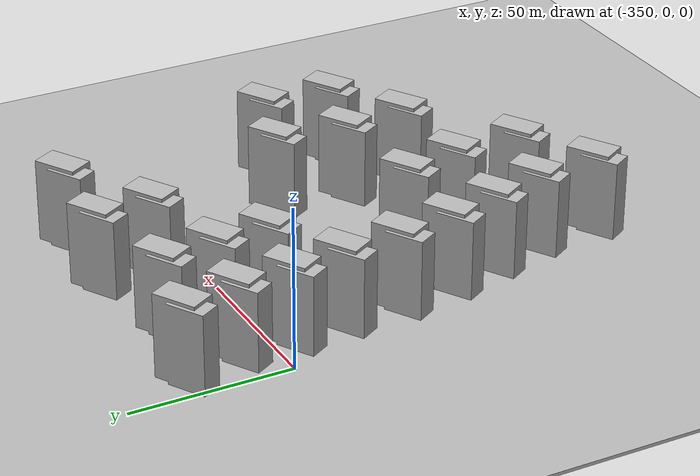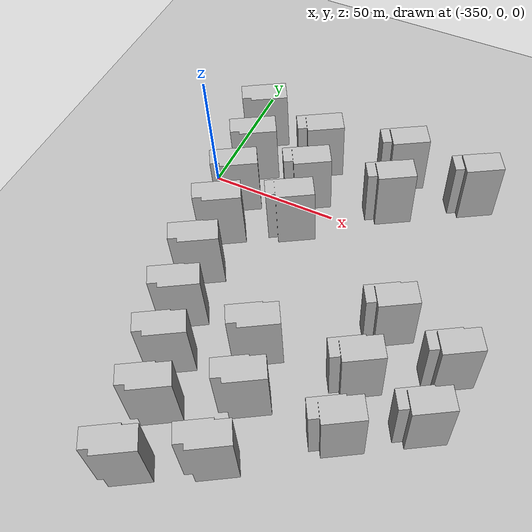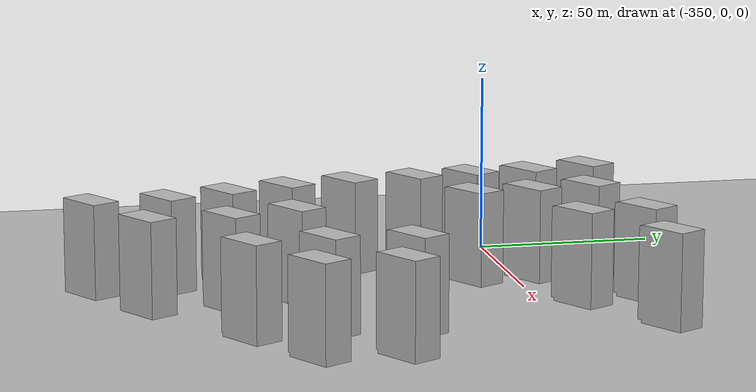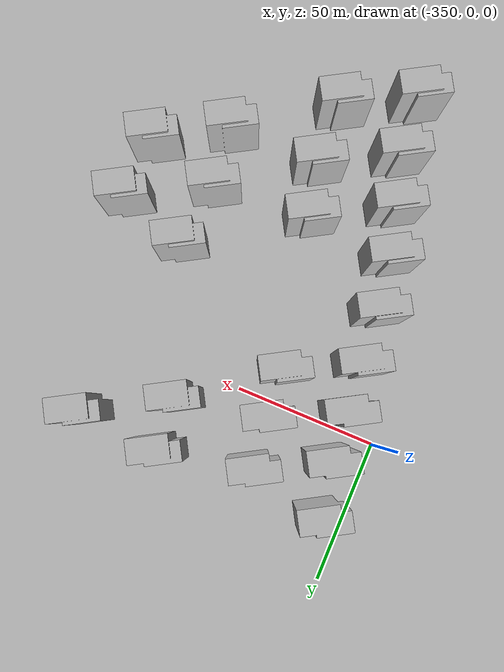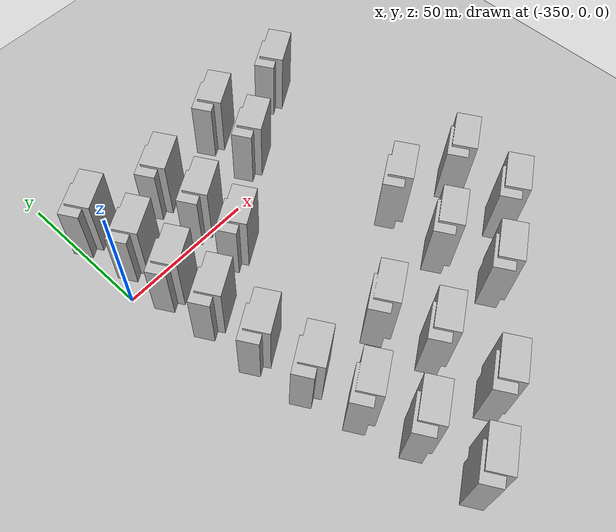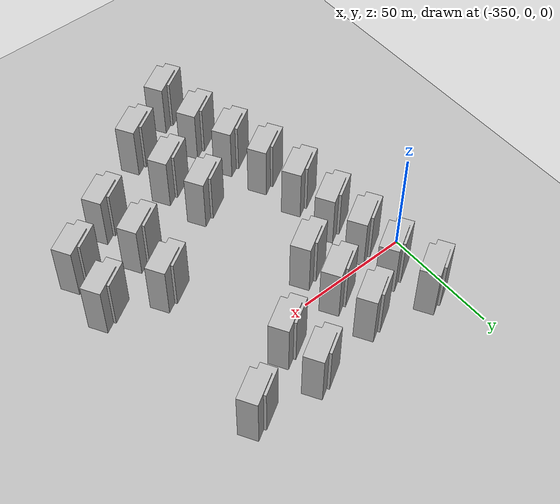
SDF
<sdf version="1.7">
 <world name="default">
  <model name="ground_plane">
   <static>1</static>
   <link name="link">
    <collision name="collision">
     <geometry><mesh><uri>model://ground_plane/scripts/plane.dae</uri><normal>0 0 1</normal></mesh></geometry>
     <surface><friction><ode><mu>100</mu><mu2>50</mu2></ode></friction></surface>
    </collision>
    <visual name="visual">
     <geometry><mesh><uri>model://ground_plane/scripts/plane.dae</uri><normal>0 0 1</normal></mesh></geometry>
     <material>
      <lighting>1</lighting>
      <script><uri>model://ground_plane/scripts/plane.jpg</uri><name>__default__</name></script>
      <shader type="pixel"/>
     </material>
    </visual>
   </link>
  </model>
  <model name="apartment2_1">
   <static>1</static>
   <link name="link_0">
    <inertial>
     <mass>1</mass>
     <inertia>
      <ixx>0.166667</ixx>
      <ixy>0</ixy>
      <ixz>0</ixz>
      <iyy>0.166667</iyy>
      <iyz>0</iyz>
      <izz>0.166667</izz>
     </inertia>
    </inertial>
    <pose>1e-06 -0 0 0 -0 0</pose>
    <visual name="visual">
     <geometry>
      <mesh><uri>model://apartment1/scripts/apartment1.dae</uri><scale>0.35 0.14 0.22</scale></mesh>
     </geometry>
     <material>
      <lighting>1</lighting>
      <script><uri>model://apartment1/scripts/apartment1.jpg</uri><name>__default__</name></script>
      <shader type="pixel"/>
     </material>
    </visual>
    <collision name="collision">
     <geometry>
      <mesh><uri>model://apartment1/scripts/apartment1.dae</uri><scale>0.35 0.14 0.22</scale></mesh>
     </geometry>
     <surface>
      <friction>
       <ode><mu>1</mu><mu2>1</mu2><fdir1>0 0 0</fdir1><slip1>0</slip1><slip2>0</slip2></ode>
       <torsional>
        <coefficient>1</coefficient>
        <patch_radius>0</patch_radius>
        <surface_radius>0</surface_radius>
        <use_patch_radius>1</use_patch_radius>
        <ode><slip>0</slip></ode>
       </torsional>
      </friction>
      <bounce><restitution_coefficient>0</restitution_coefficient><threshold>1e+06</threshold></bounce>
      <contact>
       <collide_without_contact>0</collide_without_contact>
       <collide_without_contact_bitmask>1</collide_without_contact_bitmask>
       <collide_bitmask>1</collide_bitmask>
       <ode>
        <soft_cfm>0</soft_cfm>
        <soft_erp>0.2</soft_erp>
        <kp>1e+13</kp>
        <kd>1</kd>
        <max_vel>0.01</max_vel>
        <min_depth>0</min_depth>
       </ode>
       <bullet>
        <split_impulse>1</split_impulse>
        <split_impulse_penetration_threshold>-0.01</split_impulse_penetration_threshold>
        <soft_cfm>0</soft_cfm>
        <soft_erp>0.2</soft_erp>
        <kp>1e+13</kp>
        <kd>1</kd>
       </bullet>
      </contact>
     </surface>
    </collision>
   </link>
   <static>0</static>
   <pose>-279.707 11.2605 0 0 -0 0.527898</pose>
  </model>
  <model name="apartment2_1_clone">
   <static>1</static>
   <link name="link_0">
    <inertial>
     <mass>1</mass>
     <inertia>
      <ixx>0.166667</ixx>
      <ixy>0</ixy>
      <ixz>0</ixz>
      <iyy>0.166667</iyy>
      <iyz>0</iyz>
      <izz>0.166667</izz>
     </inertia>
    </inertial>
    <pose>1e-06 -0 0 0 -0 0</pose>
    <visual name="visual">
     <geometry>
      <mesh><uri>model://apartment1/scripts/apartment1.dae</uri><scale>0.35 0.14 0.22</scale></mesh>
     </geometry>
     <material>
      <lighting>1</lighting>
      <script><uri>model://apartment1/scripts/apartment1.jpg</uri><name>__default__</name></script>
      <shader type="pixel"/>
     </material>
    </visual>
    <collision name="collision">
     <geometry>
      <mesh><uri>model://apartment1/scripts/apartment1.dae</uri><scale>0.35 0.14 0.22</scale></mesh>
     </geometry>
     <surface>
      <friction>
       <ode><mu>1</mu><mu2>1</mu2><fdir1>0 0 0</fdir1><slip1>0</slip1><slip2>0</slip2></ode>
       <torsional>
        <coefficient>1</coefficient>
        <patch_radius>0</patch_radius>
        <surface_radius>0</surface_radius>
        <use_patch_radius>1</use_patch_radius>
        <ode><slip>0</slip></ode>
       </torsional>
      </friction>
      <bounce><restitution_coefficient>0</restitution_coefficient><threshold>1e+06</threshold></bounce>
      <contact>
       <collide_without_contact>0</collide_without_contact>
       <collide_without_contact_bitmask>1</collide_without_contact_bitmask>
       <collide_bitmask>1</collide_bitmask>
       <ode>
        <soft_cfm>0</soft_cfm>
        <soft_erp>0.2</soft_erp>
        <kp>1e+13</kp>
        <kd>1</kd>
        <max_vel>0.01</max_vel>
        <min_depth>0</min_depth>
       </ode>
       <bullet>
        <split_impulse>1</split_impulse>
        <split_impulse_penetration_threshold>-0.01</split_impulse_penetration_threshold>
        <soft_cfm>0</soft_cfm>
        <soft_erp>0.2</soft_erp>
        <kp>1e+13</kp>
        <kd>1</kd>
       </bullet>
      </contact>
     </surface>
    </collision>
   </link>
   <static>0</static>
   <pose>-281.006 29.3579 0 0 -0 0.527898</pose>
  </model>
  <model name="apartment2_1_clone_1">
   <static>1</static>
   <link name="link_0">
    <inertial>
     <mass>1</mass>
     <inertia>
      <ixx>0.166667</ixx>
      <ixy>0</ixy>
      <ixz>0</ixz>
      <iyy>0.166667</iyy>
      <iyz>0</iyz>
      <izz>0.166667</izz>
     </inertia>
    </inertial>
    <pose>1e-06 -0 0 0 -0 0</pose>
    <visual name="visual">
     <geometry>
      <mesh><uri>model://apartment1/scripts/apartment1.dae</uri><scale>0.35 0.14 0.22</scale></mesh>
     </geometry>
     <material>
      <lighting>1</lighting>
      <script><uri>model://apartment1/scripts/apartment1.jpg</uri><name>__default__</name></script>
      <shader type="pixel"/>
     </material>
    </visual>
    <collision name="collision">
     <geometry>
      <mesh><uri>model://apartment1/scripts/apartment1.dae</uri><scale>0.35 0.14 0.22</scale></mesh>
     </geometry>
     <surface>
      <friction>
       <ode><mu>1</mu><mu2>1</mu2><fdir1>0 0 0</fdir1><slip1>0</slip1><slip2>0</slip2></ode>
       <torsional>
        <coefficient>1</coefficient>
        <patch_radius>0</patch_radius>
        <surface_radius>0</surface_radius>
        <use_patch_radius>1</use_patch_radius>
        <ode><slip>0</slip></ode>
       </torsional>
      </friction>
      <bounce><restitution_coefficient>0</restitution_coefficient><threshold>1e+06</threshold></bounce>
      <contact>
       <collide_without_contact>0</collide_without_contact>
       <collide_without_contact_bitmask>1</collide_without_contact_bitmask>
       <collide_bitmask>1</collide_bitmask>
       <ode>
        <soft_cfm>0</soft_cfm>
        <soft_erp>0.2</soft_erp>
        <kp>1e+13</kp>
        <kd>1</kd>
        <max_vel>0.01</max_vel>
        <min_depth>0</min_depth>
       </ode>
       <bullet>
        <split_impulse>1</split_impulse>
        <split_impulse_penetration_threshold>-0.01</split_impulse_penetration_threshold>
        <soft_cfm>0</soft_cfm>
        <soft_erp>0.2</soft_erp>
        <kp>1e+13</kp>
        <kd>1</kd>
       </bullet>
      </contact>
     </surface>
    </collision>
   </link>
   <static>0</static>
   <pose>-251.791 27.5115 0 0 -0 0.527898</pose>
  </model>
  <model name="apartment2_1_clone_7">
   <static>1</static>
   <link name="link_0">
    <inertial>
     <mass>1</mass>
     <inertia>
      <ixx>0.166667</ixx>
      <ixy>0</ixy>
      <ixz>0</ixz>
      <iyy>0.166667</iyy>
      <iyz>0</iyz>
      <izz>0.166667</izz>
     </inertia>
    </inertial>
    <pose>1e-06 -0 0 0 -0 0</pose>
    <visual name="visual">
     <geometry>
      <mesh><uri>model://apartment1/scripts/apartment1.dae</uri><scale>0.35 0.14 0.22</scale></mesh>
     </geometry>
     <material>
      <lighting>1</lighting>
      <script><uri>model://apartment1/scripts/apartment1.jpg</uri><name>__default__</name></script>
      <shader type="pixel"/>
     </material>
    </visual>
    <collision name="collision">
     <geometry>
      <mesh><uri>model://apartment1/scripts/apartment1.dae</uri><scale>0.35 0.14 0.22</scale></mesh>
     </geometry>
     <surface>
      <friction>
       <ode><mu>1</mu><mu2>1</mu2><fdir1>0 0 0</fdir1><slip1>0</slip1><slip2>0</slip2></ode>
       <torsional>
        <coefficient>1</coefficient>
        <patch_radius>0</patch_radius>
        <surface_radius>0</surface_radius>
        <use_patch_radius>1</use_patch_radius>
        <ode><slip>0</slip></ode>
       </torsional>
      </friction>
      <bounce><restitution_coefficient>0</restitution_coefficient><threshold>1e+06</threshold></bounce>
      <contact>
       <collide_without_contact>0</collide_without_contact>
       <collide_without_contact_bitmask>1</collide_without_contact_bitmask>
       <collide_bitmask>1</collide_bitmask>
       <ode>
        <soft_cfm>0</soft_cfm>
        <soft_erp>0.2</soft_erp>
        <kp>1e+13</kp>
        <kd>1</kd>
        <max_vel>0.01</max_vel>
        <min_depth>0</min_depth>
       </ode>
       <bullet>
        <split_impulse>1</split_impulse>
        <split_impulse_penetration_threshold>-0.01</split_impulse_penetration_threshold>
        <soft_cfm>0</soft_cfm>
        <soft_erp>0.2</soft_erp>
        <kp>1e+13</kp>
        <kd>1</kd>
       </bullet>
      </contact>
     </surface>
    </collision>
   </link>
   <static>0</static>
   <pose>-260.735 -82.3952 0 0 -0 0.527898</pose>
  </model>
  <model name="apartment2_1_clone_8">
   <static>1</static>
   <link name="link_0">
    <inertial>
     <mass>1</mass>
     <inertia>
      <ixx>0.166667</ixx>
      <ixy>0</ixy>
      <ixz>0</ixz>
      <iyy>0.166667</iyy>
      <iyz>0</iyz>
      <izz>0.166667</izz>
     </inertia>
    </inertial>
    <pose>1e-06 -0 0 0 -0 0</pose>
    <visual name="visual">
     <geometry>
      <mesh><uri>model://apartment1/scripts/apartment1.dae</uri><scale>0.35 0.14 0.22</scale></mesh>
     </geometry>
     <material>
      <lighting>1</lighting>
      <script><uri>model://apartment1/scripts/apartment1.jpg</uri><name>__default__</name></script>
      <shader type="pixel"/>
     </material>
    </visual>
    <collision name="collision">
     <geometry>
      <mesh><uri>model://apartment1/scripts/apartment1.dae</uri><scale>0.35 0.14 0.22</scale></mesh>
     </geometry>
     <surface>
      <friction>
       <ode><mu>1</mu><mu2>1</mu2><fdir1>0 0 0</fdir1><slip1>0</slip1><slip2>0</slip2></ode>
       <torsional>
        <coefficient>1</coefficient>
        <patch_radius>0</patch_radius>
        <surface_radius>0</surface_radius>
        <use_patch_radius>1</use_patch_radius>
        <ode><slip>0</slip></ode>
       </torsional>
      </friction>
      <bounce><restitution_coefficient>0</restitution_coefficient><threshold>1e+06</threshold></bounce>
      <contact>
       <collide_without_contact>0</collide_without_contact>
       <collide_without_contact_bitmask>1</collide_without_contact_bitmask>
       <collide_bitmask>1</collide_bitmask>
       <ode>
        <soft_cfm>0</soft_cfm>
        <soft_erp>0.2</soft_erp>
        <kp>1e+13</kp>
        <kd>1</kd>
        <max_vel>0.01</max_vel>
        <min_depth>0</min_depth>
       </ode>
       <bullet>
        <split_impulse>1</split_impulse>
        <split_impulse_penetration_threshold>-0.01</split_impulse_penetration_threshold>
        <soft_cfm>0</soft_cfm>
        <soft_erp>0.2</soft_erp>
        <kp>1e+13</kp>
        <kd>1</kd>
       </bullet>
      </contact>
     </surface>
    </collision>
   </link>
   <static>0</static>
   <pose>-237.747 -68.8073 0 0 -0 0.527898</pose>
  </model>
  <model name="apartment2_1_clone_11">
   <static>1</static>
   <link name="link_0">
    <inertial>
     <mass>1</mass>
     <inertia>
      <ixx>0.166667</ixx>
      <ixy>0</ixy>
      <ixz>0</ixz>
      <iyy>0.166667</iyy>
      <iyz>0</iyz>
      <izz>0.166667</izz>
     </inertia>
    </inertial>
    <pose>1e-06 -0 0 0 -0 0</pose>
    <visual name="visual">
     <geometry>
      <mesh><uri>model://apartment1/scripts/apartment1.dae</uri><scale>0.35 0.14 0.22</scale></mesh>
     </geometry>
     <material>
      <lighting>1</lighting>
      <script><uri>model://apartment1/scripts/apartment1.jpg</uri><name>__default__</name></script>
      <shader type="pixel"/>
     </material>
    </visual>
    <collision name="collision">
     <geometry>
      <mesh><uri>model://apartment1/scripts/apartment1.dae</uri><scale>0.35 0.14 0.22</scale></mesh>
     </geometry>
     <surface>
      <friction>
       <ode><mu>1</mu><mu2>1</mu2><fdir1>0 0 0</fdir1><slip1>0</slip1><slip2>0</slip2></ode>
       <torsional>
        <coefficient>1</coefficient>
        <patch_radius>0</patch_radius>
        <surface_radius>0</surface_radius>
        <use_patch_radius>1</use_patch_radius>
        <ode><slip>0</slip></ode>
       </torsional>
      </friction>
      <bounce><restitution_coefficient>0</restitution_coefficient><threshold>1e+06</threshold></bounce>
      <contact>
       <collide_without_contact>0</collide_without_contact>
       <collide_without_contact_bitmask>1</collide_without_contact_bitmask>
       <collide_bitmask>1</collide_bitmask>
       <ode>
        <soft_cfm>0</soft_cfm>
        <soft_erp>0.2</soft_erp>
        <kp>1e+13</kp>
        <kd>1</kd>
        <max_vel>0.01</max_vel>
        <min_depth>0</min_depth>
       </ode>
       <bullet>
        <split_impulse>1</split_impulse>
        <split_impulse_penetration_threshold>-0.01</split_impulse_penetration_threshold>
        <soft_cfm>0</soft_cfm>
        <soft_erp>0.2</soft_erp>
        <kp>1e+13</kp>
        <kd>1</kd>
       </bullet>
      </contact>
     </surface>
    </collision>
   </link>
   <static>0</static>
   <pose>-263.048 -61.4009 0 0 -0 0.527898</pose>
  </model>
  <model name="apartment2_1_clone_12">
   <static>1</static>
   <link name="link_0">
    <inertial>
     <mass>1</mass>
     <inertia>
      <ixx>0.166667</ixx>
      <ixy>0</ixy>
      <ixz>0</ixz>
      <iyy>0.166667</iyy>
      <iyz>0</iyz>
      <izz>0.166667</izz>
     </inertia>
    </inertial>
    <pose>1e-06 -0 0 0 -0 0</pose>
    <visual name="visual">
     <geometry>
      <mesh><uri>model://apartment1/scripts/apartment1.dae</uri><scale>0.35 0.14 0.22</scale></mesh>
     </geometry>
     <material>
      <lighting>1</lighting>
      <script><uri>model://apartment1/scripts/apartment1.jpg</uri><name>__default__</name></script>
      <shader type="pixel"/>
     </material>
    </visual>
    <collision name="collision">
     <geometry>
      <mesh><uri>model://apartment1/scripts/apartment1.dae</uri><scale>0.35 0.14 0.22</scale></mesh>
     </geometry>
     <surface>
      <friction>
       <ode><mu>1</mu><mu2>1</mu2><fdir1>0 0 0</fdir1><slip1>0</slip1><slip2>0</slip2></ode>
       <torsional>
        <coefficient>1</coefficient>
        <patch_radius>0</patch_radius>
        <surface_radius>0</surface_radius>
        <use_patch_radius>1</use_patch_radius>
        <ode><slip>0</slip></ode>
       </torsional>
      </friction>
      <bounce><restitution_coefficient>0</restitution_coefficient><threshold>1e+06</threshold></bounce>
      <contact>
       <collide_without_contact>0</collide_without_contact>
       <collide_without_contact_bitmask>1</collide_without_contact_bitmask>
       <collide_bitmask>1</collide_bitmask>
       <ode>
        <soft_cfm>0</soft_cfm>
        <soft_erp>0.2</soft_erp>
        <kp>1e+13</kp>
        <kd>1</kd>
        <max_vel>0.01</max_vel>
        <min_depth>0</min_depth>
       </ode>
       <bullet>
        <split_impulse>1</split_impulse>
        <split_impulse_penetration_threshold>-0.01</split_impulse_penetration_threshold>
        <soft_cfm>0</soft_cfm>
        <soft_erp>0.2</soft_erp>
        <kp>1e+13</kp>
        <kd>1</kd>
       </bullet>
      </contact>
     </surface>
    </collision>
   </link>
   <static>0</static>
   <pose>-236.064 -46.4496 0 0 -0 0.527898</pose>
  </model>
  <model name="apartment2_1_clone_15">
   <static>1</static>
   <link name="link_0">
    <inertial>
     <mass>1</mass>
     <inertia>
      <ixx>0.166667</ixx>
      <ixy>0</ixy>
      <ixz>0</ixz>
      <iyy>0.166667</iyy>
      <iyz>0</iyz>
      <izz>0.166667</izz>
     </inertia>
    </inertial>
    <pose>1e-06 -0 0 0 -0 0</pose>
    <visual name="visual">
     <geometry>
      <mesh><uri>model://apartment1/scripts/apartment1.dae</uri><scale>0.35 0.14 0.22</scale></mesh>
     </geometry>
     <material>
      <lighting>1</lighting>
      <script><uri>model://apartment1/scripts/apartment1.jpg</uri><name>__default__</name></script>
      <shader type="pixel"/>
     </material>
    </visual>
    <collision name="collision">
     <geometry>
      <mesh><uri>model://apartment1/scripts/apartment1.dae</uri><scale>0.35 0.14 0.22</scale></mesh>
     </geometry>
     <surface>
      <friction>
       <ode><mu>1</mu><mu2>1</mu2><fdir1>0 0 0</fdir1><slip1>0</slip1><slip2>0</slip2></ode>
       <torsional>
        <coefficient>1</coefficient>
        <patch_radius>0</patch_radius>
        <surface_radius>0</surface_radius>
        <use_patch_radius>1</use_patch_radius>
        <ode><slip>0</slip></ode>
       </torsional>
      </friction>
      <bounce><restitution_coefficient>0</restitution_coefficient><threshold>1e+06</threshold></bounce>
      <contact>
       <collide_without_contact>0</collide_without_contact>
       <collide_without_contact_bitmask>1</collide_without_contact_bitmask>
       <collide_bitmask>1</collide_bitmask>
       <ode>
        <soft_cfm>0</soft_cfm>
        <soft_erp>0.2</soft_erp>
        <kp>1e+13</kp>
        <kd>1</kd>
        <max_vel>0.01</max_vel>
        <min_depth>0</min_depth>
       </ode>
       <bullet>
        <split_impulse>1</split_impulse>
        <split_impulse_penetration_threshold>-0.01</split_impulse_penetration_threshold>
        <soft_cfm>0</soft_cfm>
        <soft_erp>0.2</soft_erp>
        <kp>1e+13</kp>
        <kd>1</kd>
       </bullet>
      </contact>
     </surface>
    </collision>
   </link>
   <static>0</static>
   <pose>-260.18 -38.608 0 0 -0 0.527898</pose>
  </model>
  <model name="apartment2_1_clone_7_clone">
   <static>1</static>
   <link name="link_0">
    <inertial>
     <mass>1</mass>
     <inertia>
      <ixx>0.166667</ixx>
      <ixy>0</ixy>
      <ixz>0</ixz>
      <iyy>0.166667</iyy>
      <iyz>0</iyz>
      <izz>0.166667</izz>
     </inertia>
    </inertial>
    <pose>1e-06 -0 0 0 -0 0</pose>
    <visual name="visual">
     <geometry>
      <mesh><uri>model://apartment1/scripts/apartment1.dae</uri><scale>0.35 0.14 0.22</scale></mesh>
     </geometry>
     <material>
      <lighting>1</lighting>
      <script><uri>model://apartment1/scripts/apartment1.jpg</uri><name>__default__</name></script>
      <shader type="pixel"/>
     </material>
    </visual>
    <collision name="collision">
     <geometry>
      <mesh><uri>model://apartment1/scripts/apartment1.dae</uri><scale>0.35 0.14 0.22</scale></mesh>
     </geometry>
     <surface>
      <friction>
       <ode><mu>1</mu><mu2>1</mu2><fdir1>0 0 0</fdir1><slip1>0</slip1><slip2>0</slip2></ode>
       <torsional>
        <coefficient>1</coefficient>
        <patch_radius>0</patch_radius>
        <surface_radius>0</surface_radius>
        <use_patch_radius>1</use_patch_radius>
        <ode><slip>0</slip></ode>
       </torsional>
      </friction>
      <bounce><restitution_coefficient>0</restitution_coefficient><threshold>1e+06</threshold></bounce>
      <contact>
       <collide_without_contact>0</collide_without_contact>
       <collide_without_contact_bitmask>1</collide_without_contact_bitmask>
       <collide_bitmask>1</collide_bitmask>
       <ode>
        <soft_cfm>0</soft_cfm>
        <soft_erp>0.2</soft_erp>
        <kp>1e+13</kp>
        <kd>1</kd>
        <max_vel>0.01</max_vel>
        <min_depth>0</min_depth>
       </ode>
       <bullet>
        <split_impulse>1</split_impulse>
        <split_impulse_penetration_threshold>-0.01</split_impulse_penetration_threshold>
        <soft_cfm>0</soft_cfm>
        <soft_erp>0.2</soft_erp>
        <kp>1e+13</kp>
        <kd>1</kd>
       </bullet>
      </contact>
     </surface>
    </collision>
   </link>
   <static>0</static>
   <pose>-316.606 -117.587 0 0 -0 0.527898</pose>
  </model>
  <model name="apartment2_1_clone_7_clone_0">
   <static>1</static>
   <link name="link_0">
    <inertial>
     <mass>1</mass>
     <inertia>
      <ixx>0.166667</ixx>
      <ixy>0</ixy>
      <ixz>0</ixz>
      <iyy>0.166667</iyy>
      <iyz>0</iyz>
      <izz>0.166667</izz>
     </inertia>
    </inertial>
    <pose>1e-06 -0 0 0 -0 0</pose>
    <visual name="visual">
     <geometry>
      <mesh><uri>model://apartment1/scripts/apartment1.dae</uri><scale>0.35 0.14 0.22</scale></mesh>
     </geometry>
     <material>
      <lighting>1</lighting>
      <script><uri>model://apartment1/scripts/apartment1.jpg</uri><name>__default__</name></script>
      <shader type="pixel"/>
     </material>
    </visual>
    <collision name="collision">
     <geometry>
      <mesh><uri>model://apartment1/scripts/apartment1.dae</uri><scale>0.35 0.14 0.22</scale></mesh>
     </geometry>
     <surface>
      <friction>
       <ode><mu>1</mu><mu2>1</mu2><fdir1>0 0 0</fdir1><slip1>0</slip1><slip2>0</slip2></ode>
       <torsional>
        <coefficient>1</coefficient>
        <patch_radius>0</patch_radius>
        <surface_radius>0</surface_radius>
        <use_patch_radius>1</use_patch_radius>
        <ode><slip>0</slip></ode>
       </torsional>
      </friction>
      <bounce><restitution_coefficient>0</restitution_coefficient><threshold>1e+06</threshold></bounce>
      <contact>
       <collide_without_contact>0</collide_without_contact>
       <collide_without_contact_bitmask>1</collide_without_contact_bitmask>
       <collide_bitmask>1</collide_bitmask>
       <ode>
        <soft_cfm>0</soft_cfm>
        <soft_erp>0.2</soft_erp>
        <kp>1e+13</kp>
        <kd>1</kd>
        <max_vel>0.01</max_vel>
        <min_depth>0</min_depth>
       </ode>
       <bullet>
        <split_impulse>1</split_impulse>
        <split_impulse_penetration_threshold>-0.01</split_impulse_penetration_threshold>
        <soft_cfm>0</soft_cfm>
        <soft_erp>0.2</soft_erp>
        <kp>1e+13</kp>
        <kd>1</kd>
       </bullet>
      </contact>
     </surface>
    </collision>
   </link>
   <static>0</static>
   <pose>-292.88 -105.136 0 0 -0 0.527898</pose>
  </model>
  <model name="apartment2_1_clone_7_clone_1">
   <static>1</static>
   <link name="link_0">
    <inertial>
     <mass>1</mass>
     <inertia>
      <ixx>0.166667</ixx>
      <ixy>0</ixy>
      <ixz>0</ixz>
      <iyy>0.166667</iyy>
      <iyz>0</iyz>
      <izz>0.166667</izz>
     </inertia>
    </inertial>
    <pose>1e-06 -0 0 0 -0 0</pose>
    <visual name="visual">
     <geometry>
      <mesh><uri>model://apartment1/scripts/apartment1.dae</uri><scale>0.35 0.14 0.22</scale></mesh>
     </geometry>
     <material>
      <lighting>1</lighting>
      <script><uri>model://apartment1/scripts/apartment1.jpg</uri><name>__default__</name></script>
      <shader type="pixel"/>
     </material>
    </visual>
    <collision name="collision">
     <geometry>
      <mesh><uri>model://apartment1/scripts/apartment1.dae</uri><scale>0.35 0.14 0.22</scale></mesh>
     </geometry>
     <surface>
      <friction>
       <ode><mu>1</mu><mu2>1</mu2><fdir1>0 0 0</fdir1><slip1>0</slip1><slip2>0</slip2></ode>
       <torsional>
        <coefficient>1</coefficient>
        <patch_radius>0</patch_radius>
        <surface_radius>0</surface_radius>
        <use_patch_radius>1</use_patch_radius>
        <ode><slip>0</slip></ode>
       </torsional>
      </friction>
      <bounce><restitution_coefficient>0</restitution_coefficient><threshold>1e+06</threshold></bounce>
      <contact>
       <collide_without_contact>0</collide_without_contact>
       <collide_without_contact_bitmask>1</collide_without_contact_bitmask>
       <collide_bitmask>1</collide_bitmask>
       <ode>
        <soft_cfm>0</soft_cfm>
        <soft_erp>0.2</soft_erp>
        <kp>1e+13</kp>
        <kd>1</kd>
        <max_vel>0.01</max_vel>
        <min_depth>0</min_depth>
       </ode>
       <bullet>
        <split_impulse>1</split_impulse>
        <split_impulse_penetration_threshold>-0.01</split_impulse_penetration_threshold>
        <soft_cfm>0</soft_cfm>
        <soft_erp>0.2</soft_erp>
        <kp>1e+13</kp>
        <kd>1</kd>
       </bullet>
      </contact>
     </surface>
    </collision>
   </link>
   <static>0</static>
   <pose>-318.117 -96.3741 0 0 -0 0.527898</pose>
  </model>
  <model name="apartment2_1_clone_7_clone_2">
   <static>1</static>
   <link name="link_0">
    <inertial>
     <mass>1</mass>
     <inertia>
      <ixx>0.166667</ixx>
      <ixy>0</ixy>
      <ixz>0</ixz>
      <iyy>0.166667</iyy>
      <iyz>0</iyz>
      <izz>0.166667</izz>
     </inertia>
    </inertial>
    <pose>1e-06 -0 0 0 -0 0</pose>
    <visual name="visual">
     <geometry>
      <mesh><uri>model://apartment1/scripts/apartment1.dae</uri><scale>0.35 0.14 0.22</scale></mesh>
     </geometry>
     <material>
      <lighting>1</lighting>
      <script><uri>model://apartment1/scripts/apartment1.jpg</uri><name>__default__</name></script>
      <shader type="pixel"/>
     </material>
    </visual>
    <collision name="collision">
     <geometry>
      <mesh><uri>model://apartment1/scripts/apartment1.dae</uri><scale>0.35 0.14 0.22</scale></mesh>
     </geometry>
     <surface>
      <friction>
       <ode><mu>1</mu><mu2>1</mu2><fdir1>0 0 0</fdir1><slip1>0</slip1><slip2>0</slip2></ode>
       <torsional>
        <coefficient>1</coefficient>
        <patch_radius>0</patch_radius>
        <surface_radius>0</surface_radius>
        <use_patch_radius>1</use_patch_radius>
        <ode><slip>0</slip></ode>
       </torsional>
      </friction>
      <bounce><restitution_coefficient>0</restitution_coefficient><threshold>1e+06</threshold></bounce>
      <contact>
       <collide_without_contact>0</collide_without_contact>
       <collide_without_contact_bitmask>1</collide_without_contact_bitmask>
       <collide_bitmask>1</collide_bitmask>
       <ode>
        <soft_cfm>0</soft_cfm>
        <soft_erp>0.2</soft_erp>
        <kp>1e+13</kp>
        <kd>1</kd>
        <max_vel>0.01</max_vel>
        <min_depth>0</min_depth>
       </ode>
       <bullet>
        <split_impulse>1</split_impulse>
        <split_impulse_penetration_threshold>-0.01</split_impulse_penetration_threshold>
        <soft_cfm>0</soft_cfm>
        <soft_erp>0.2</soft_erp>
        <kp>1e+13</kp>
        <kd>1</kd>
       </bullet>
      </contact>
     </surface>
    </collision>
   </link>
   <static>0</static>
   <pose>-293.08 -82.5776 0 0 -0 0.527898</pose>
  </model>
  <model name="apartment2_1_clone_7_clone_3">
   <static>1</static>
   <link name="link_0">
    <inertial>
     <mass>1</mass>
     <inertia>
      <ixx>0.166667</ixx>
      <ixy>0</ixy>
      <ixz>0</ixz>
      <iyy>0.166667</iyy>
      <iyz>0</iyz>
      <izz>0.166667</izz>
     </inertia>
    </inertial>
    <pose>1e-06 -0 0 0 -0 0</pose>
    <visual name="visual">
     <geometry>
      <mesh><uri>model://apartment1/scripts/apartment1.dae</uri><scale>0.35 0.14 0.22</scale></mesh>
     </geometry>
     <material>
      <lighting>1</lighting>
      <script><uri>model://apartment1/scripts/apartment1.jpg</uri><name>__default__</name></script>
      <shader type="pixel"/>
     </material>
    </visual>
    <collision name="collision">
     <geometry>
      <mesh><uri>model://apartment1/scripts/apartment1.dae</uri><scale>0.35 0.14 0.22</scale></mesh>
     </geometry>
     <surface>
      <friction>
       <ode><mu>1</mu><mu2>1</mu2><fdir1>0 0 0</fdir1><slip1>0</slip1><slip2>0</slip2></ode>
       <torsional>
        <coefficient>1</coefficient>
        <patch_radius>0</patch_radius>
        <surface_radius>0</surface_radius>
        <use_patch_radius>1</use_patch_radius>
        <ode><slip>0</slip></ode>
       </torsional>
      </friction>
      <bounce><restitution_coefficient>0</restitution_coefficient><threshold>1e+06</threshold></bounce>
      <contact>
       <collide_without_contact>0</collide_without_contact>
       <collide_without_contact_bitmask>1</collide_without_contact_bitmask>
       <collide_bitmask>1</collide_bitmask>
       <ode>
        <soft_cfm>0</soft_cfm>
        <soft_erp>0.2</soft_erp>
        <kp>1e+13</kp>
        <kd>1</kd>
        <max_vel>0.01</max_vel>
        <min_depth>0</min_depth>
       </ode>
       <bullet>
        <split_impulse>1</split_impulse>
        <split_impulse_penetration_threshold>-0.01</split_impulse_penetration_threshold>
        <soft_cfm>0</soft_cfm>
        <soft_erp>0.2</soft_erp>
        <kp>1e+13</kp>
        <kd>1</kd>
       </bullet>
      </contact>
     </surface>
    </collision>
   </link>
   <static>0</static>
   <pose>-323.322 -78.6423 0 0 -0 0.527898</pose>
  </model>
  <model name="apartment2_1_clone_7_clone_4">
   <static>1</static>
   <link name="link_0">
    <inertial>
     <mass>1</mass>
     <inertia>
      <ixx>0.166667</ixx>
      <ixy>0</ixy>
      <ixz>0</ixz>
      <iyy>0.166667</iyy>
      <iyz>0</iyz>
      <izz>0.166667</izz>
     </inertia>
    </inertial>
    <pose>1e-06 -0 0 0 -0 0</pose>
    <visual name="visual">
     <geometry>
      <mesh><uri>model://apartment1/scripts/apartment1.dae</uri><scale>0.35 0.14 0.22</scale></mesh>
     </geometry>
     <material>
      <lighting>1</lighting>
      <script><uri>model://apartment1/scripts/apartment1.jpg</uri><name>__default__</name></script>
      <shader type="pixel"/>
     </material>
    </visual>
    <collision name="collision">
     <geometry>
      <mesh><uri>model://apartment1/scripts/apartment1.dae</uri><scale>0.35 0.14 0.22</scale></mesh>
     </geometry>
     <surface>
      <friction>
       <ode><mu>1</mu><mu2>1</mu2><fdir1>0 0 0</fdir1><slip1>0</slip1><slip2>0</slip2></ode>
       <torsional>
        <coefficient>1</coefficient>
        <patch_radius>0</patch_radius>
        <surface_radius>0</surface_radius>
        <use_patch_radius>1</use_patch_radius>
        <ode><slip>0</slip></ode>
       </torsional>
      </friction>
      <bounce><restitution_coefficient>0</restitution_coefficient><threshold>1e+06</threshold></bounce>
      <contact>
       <collide_without_contact>0</collide_without_contact>
       <collide_without_contact_bitmask>1</collide_without_contact_bitmask>
       <collide_bitmask>1</collide_bitmask>
       <ode>
        <soft_cfm>0</soft_cfm>
        <soft_erp>0.2</soft_erp>
        <kp>1e+13</kp>
        <kd>1</kd>
        <max_vel>0.01</max_vel>
        <min_depth>0</min_depth>
       </ode>
       <bullet>
        <split_impulse>1</split_impulse>
        <split_impulse_penetration_threshold>-0.01</split_impulse_penetration_threshold>
        <soft_cfm>0</soft_cfm>
        <soft_erp>0.2</soft_erp>
        <kp>1e+13</kp>
        <kd>1</kd>
       </bullet>
      </contact>
     </surface>
    </collision>
   </link>
   <static>0</static>
   <pose>-297.818 -63.9021 0 0 -0 0.527898</pose>
  </model>
  <model name="apartment2_1_clone_7_clone_5">
   <static>1</static>
   <link name="link_0">
    <inertial>
     <mass>1</mass>
     <inertia>
      <ixx>0.166667</ixx>
      <ixy>0</ixy>
      <ixz>0</ixz>
      <iyy>0.166667</iyy>
      <iyz>0</iyz>
      <izz>0.166667</izz>
     </inertia>
    </inertial>
    <pose>1e-06 -0 0 0 -0 0</pose>
    <visual name="visual">
     <geometry>
      <mesh><uri>model://apartment1/scripts/apartment1.dae</uri><scale>0.35 0.14 0.22</scale></mesh>
     </geometry>
     <material>
      <lighting>1</lighting>
      <script><uri>model://apartment1/scripts/apartment1.jpg</uri><name>__default__</name></script>
      <shader type="pixel"/>
     </material>
    </visual>
    <collision name="collision">
     <geometry>
      <mesh><uri>model://apartment1/scripts/apartment1.dae</uri><scale>0.35 0.14 0.22</scale></mesh>
     </geometry>
     <surface>
      <friction>
       <ode><mu>1</mu><mu2>1</mu2><fdir1>0 0 0</fdir1><slip1>0</slip1><slip2>0</slip2></ode>
       <torsional>
        <coefficient>1</coefficient>
        <patch_radius>0</patch_radius>
        <surface_radius>0</surface_radius>
        <use_patch_radius>1</use_patch_radius>
        <ode><slip>0</slip></ode>
       </torsional>
      </friction>
      <bounce><restitution_coefficient>0</restitution_coefficient><threshold>1e+06</threshold></bounce>
      <contact>
       <collide_without_contact>0</collide_without_contact>
       <collide_without_contact_bitmask>1</collide_without_contact_bitmask>
       <collide_bitmask>1</collide_bitmask>
       <ode>
        <soft_cfm>0</soft_cfm>
        <soft_erp>0.2</soft_erp>
        <kp>1e+13</kp>
        <kd>1</kd>
        <max_vel>0.01</max_vel>
        <min_depth>0</min_depth>
       </ode>
       <bullet>
        <split_impulse>1</split_impulse>
        <split_impulse_penetration_threshold>-0.01</split_impulse_penetration_threshold>
        <soft_cfm>0</soft_cfm>
        <soft_erp>0.2</soft_erp>
        <kp>1e+13</kp>
        <kd>1</kd>
       </bullet>
      </contact>
     </surface>
    </collision>
   </link>
   <static>0</static>
   <pose>-328.34 -61.2477 0 0 -0 0.527898</pose>
  </model>
  <model name="apartment2_1_clone_7_clone_6">
   <static>1</static>
   <link name="link_0">
    <inertial>
     <mass>1</mass>
     <inertia>
      <ixx>0.166667</ixx>
      <ixy>0</ixy>
      <ixz>0</ixz>
      <iyy>0.166667</iyy>
      <iyz>0</iyz>
      <izz>0.166667</izz>
     </inertia>
    </inertial>
    <pose>1e-06 -0 0 0 -0 0</pose>
    <visual name="visual">
     <geometry>
      <mesh><uri>model://apartment1/scripts/apartment1.dae</uri><scale>0.35 0.14 0.22</scale></mesh>
     </geometry>
     <material>
      <lighting>1</lighting>
      <script><uri>model://apartment1/scripts/apartment1.jpg</uri><name>__default__</name></script>
      <shader type="pixel"/>
     </material>
    </visual>
    <collision name="collision">
     <geometry>
      <mesh><uri>model://apartment1/scripts/apartment1.dae</uri><scale>0.35 0.14 0.22</scale></mesh>
     </geometry>
     <surface>
      <friction>
       <ode><mu>1</mu><mu2>1</mu2><fdir1>0 0 0</fdir1><slip1>0</slip1><slip2>0</slip2></ode>
       <torsional>
        <coefficient>1</coefficient>
        <patch_radius>0</patch_radius>
        <surface_radius>0</surface_radius>
        <use_patch_radius>1</use_patch_radius>
        <ode><slip>0</slip></ode>
       </torsional>
      </friction>
      <bounce><restitution_coefficient>0</restitution_coefficient><threshold>1e+06</threshold></bounce>
      <contact>
       <collide_without_contact>0</collide_without_contact>
       <collide_without_contact_bitmask>1</collide_without_contact_bitmask>
       <collide_bitmask>1</collide_bitmask>
       <ode>
        <soft_cfm>0</soft_cfm>
        <soft_erp>0.2</soft_erp>
        <kp>1e+13</kp>
        <kd>1</kd>
        <max_vel>0.01</max_vel>
        <min_depth>0</min_depth>
       </ode>
       <bullet>
        <split_impulse>1</split_impulse>
        <split_impulse_penetration_threshold>-0.01</split_impulse_penetration_threshold>
        <soft_cfm>0</soft_cfm>
        <soft_erp>0.2</soft_erp>
        <kp>1e+13</kp>
        <kd>1</kd>
       </bullet>
      </contact>
     </surface>
    </collision>
   </link>
   <static>0</static>
   <pose>-331.613 -42.7811 0 0 -0 0.527898</pose>
  </model>
  <model name="apartment2_1_clone_7_clone_7">
   <static>1</static>
   <link name="link_0">
    <inertial>
     <mass>1</mass>
     <inertia>
      <ixx>0.166667</ixx>
      <ixy>0</ixy>
      <ixz>0</ixz>
      <iyy>0.166667</iyy>
      <iyz>0</iyz>
      <izz>0.166667</izz>
     </inertia>
    </inertial>
    <pose>1e-06 -0 0 0 -0 0</pose>
    <visual name="visual">
     <geometry>
      <mesh><uri>model://apartment1/scripts/apartment1.dae</uri><scale>0.35 0.14 0.22</scale></mesh>
     </geometry>
     <material>
      <lighting>1</lighting>
      <script><uri>model://apartment1/scripts/apartment1.jpg</uri><name>__default__</name></script>
      <shader type="pixel"/>
     </material>
    </visual>
    <collision name="collision">
     <geometry>
      <mesh><uri>model://apartment1/scripts/apartment1.dae</uri><scale>0.35 0.14 0.22</scale></mesh>
     </geometry>
     <surface>
      <friction>
       <ode><mu>1</mu><mu2>1</mu2><fdir1>0 0 0</fdir1><slip1>0</slip1><slip2>0</slip2></ode>
       <torsional>
        <coefficient>1</coefficient>
        <patch_radius>0</patch_radius>
        <surface_radius>0</surface_radius>
        <use_patch_radius>1</use_patch_radius>
        <ode><slip>0</slip></ode>
       </torsional>
      </friction>
      <bounce><restitution_coefficient>0</restitution_coefficient><threshold>1e+06</threshold></bounce>
      <contact>
       <collide_without_contact>0</collide_without_contact>
       <collide_without_contact_bitmask>1</collide_without_contact_bitmask>
       <collide_bitmask>1</collide_bitmask>
       <ode>
        <soft_cfm>0</soft_cfm>
        <soft_erp>0.2</soft_erp>
        <kp>1e+13</kp>
        <kd>1</kd>
        <max_vel>0.01</max_vel>
        <min_depth>0</min_depth>
       </ode>
       <bullet>
        <split_impulse>1</split_impulse>
        <split_impulse_penetration_threshold>-0.01</split_impulse_penetration_threshold>
        <soft_cfm>0</soft_cfm>
        <soft_erp>0.2</soft_erp>
        <kp>1e+13</kp>
        <kd>1</kd>
       </bullet>
      </contact>
     </surface>
    </collision>
   </link>
   <static>0</static>
   <pose>-332.972 -23.6907 0 0 -0 0.527898</pose>
  </model>
  <model name="apartment2_1_clone_7_clone_8">
   <static>1</static>
   <link name="link_0">
    <inertial>
     <mass>1</mass>
     <inertia>
      <ixx>0.166667</ixx>
      <ixy>0</ixy>
      <ixz>0</ixz>
      <iyy>0.166667</iyy>
      <iyz>0</iyz>
      <izz>0.166667</izz>
     </inertia>
    </inertial>
    <pose>1e-06 -0 0 0 -0 0</pose>
    <visual name="visual">
     <geometry>
      <mesh><uri>model://apartment1/scripts/apartment1.dae</uri><scale>0.35 0.14 0.22</scale></mesh>
     </geometry>
     <material>
      <lighting>1</lighting>
      <script><uri>model://apartment1/scripts/apartment1.jpg</uri><name>__default__</name></script>
      <shader type="pixel"/>
     </material>
    </visual>
    <collision name="collision">
     <geometry>
      <mesh><uri>model://apartment1/scripts/apartment1.dae</uri><scale>0.35 0.14 0.22</scale></mesh>
     </geometry>
     <surface>
      <friction>
       <ode><mu>1</mu><mu2>1</mu2><fdir1>0 0 0</fdir1><slip1>0</slip1><slip2>0</slip2></ode>
       <torsional>
        <coefficient>1</coefficient>
        <patch_radius>0</patch_radius>
        <surface_radius>0</surface_radius>
        <use_patch_radius>1</use_patch_radius>
        <ode><slip>0</slip></ode>
       </torsional>
      </friction>
      <bounce><restitution_coefficient>0</restitution_coefficient><threshold>1e+06</threshold></bounce>
      <contact>
       <collide_without_contact>0</collide_without_contact>
       <collide_without_contact_bitmask>1</collide_without_contact_bitmask>
       <collide_bitmask>1</collide_bitmask>
       <ode>
        <soft_cfm>0</soft_cfm>
        <soft_erp>0.2</soft_erp>
        <kp>1e+13</kp>
        <kd>1</kd>
        <max_vel>0.01</max_vel>
        <min_depth>0</min_depth>
       </ode>
       <bullet>
        <split_impulse>1</split_impulse>
        <split_impulse_penetration_threshold>-0.01</split_impulse_penetration_threshold>
        <soft_cfm>0</soft_cfm>
        <soft_erp>0.2</soft_erp>
        <kp>1e+13</kp>
        <kd>1</kd>
       </bullet>
      </contact>
     </surface>
    </collision>
   </link>
   <static>0</static>
   <pose>-334.979 -6.80964 0 0 -0 0.527898</pose>
  </model>
  <model name="apartment2_1_clone_7_clone_9">
   <static>1</static>
   <link name="link_0">
    <inertial>
     <mass>1</mass>
     <inertia>
      <ixx>0.166667</ixx>
      <ixy>0</ixy>
      <ixz>0</ixz>
      <iyy>0.166667</iyy>
      <iyz>0</iyz>
      <izz>0.166667</izz>
     </inertia>
    </inertial>
    <pose>1e-06 -0 0 0 -0 0</pose>
    <visual name="visual">
     <geometry>
      <mesh><uri>model://apartment1/scripts/apartment1.dae</uri><scale>0.35 0.14 0.22</scale></mesh>
     </geometry>
     <material>
      <lighting>1</lighting>
      <script><uri>model://apartment1/scripts/apartment1.jpg</uri><name>__default__</name></script>
      <shader type="pixel"/>
     </material>
    </visual>
    <collision name="collision">
     <geometry>
      <mesh><uri>model://apartment1/scripts/apartment1.dae</uri><scale>0.35 0.14 0.22</scale></mesh>
     </geometry>
     <surface>
      <friction>
       <ode><mu>1</mu><mu2>1</mu2><fdir1>0 0 0</fdir1><slip1>0</slip1><slip2>0</slip2></ode>
       <torsional>
        <coefficient>1</coefficient>
        <patch_radius>0</patch_radius>
        <surface_radius>0</surface_radius>
        <use_patch_radius>1</use_patch_radius>
        <ode><slip>0</slip></ode>
       </torsional>
      </friction>
      <bounce><restitution_coefficient>0</restitution_coefficient><threshold>1e+06</threshold></bounce>
      <contact>
       <collide_without_contact>0</collide_without_contact>
       <collide_without_contact_bitmask>1</collide_without_contact_bitmask>
       <collide_bitmask>1</collide_bitmask>
       <ode>
        <soft_cfm>0</soft_cfm>
        <soft_erp>0.2</soft_erp>
        <kp>1e+13</kp>
        <kd>1</kd>
        <max_vel>0.01</max_vel>
        <min_depth>0</min_depth>
       </ode>
       <bullet>
        <split_impulse>1</split_impulse>
        <split_impulse_penetration_threshold>-0.01</split_impulse_penetration_threshold>
        <soft_cfm>0</soft_cfm>
        <soft_erp>0.2</soft_erp>
        <kp>1e+13</kp>
        <kd>1</kd>
       </bullet>
      </contact>
     </surface>
    </collision>
   </link>
   <static>0</static>
   <pose>-335.814 10.546 0 0 -0 0.527898</pose>
  </model>
  <model name="apartment2_1_clone_7_clone_10">
   <static>1</static>
   <link name="link_0">
    <inertial>
     <mass>1</mass>
     <inertia>
      <ixx>0.166667</ixx>
      <ixy>0</ixy>
      <ixz>0</ixz>
      <iyy>0.166667</iyy>
      <iyz>0</iyz>
      <izz>0.166667</izz>
     </inertia>
    </inertial>
    <pose>1e-06 -0 0 0 -0 0</pose>
    <visual name="visual">
     <geometry>
      <mesh><uri>model://apartment1/scripts/apartment1.dae</uri><scale>0.35 0.14 0.22</scale></mesh>
     </geometry>
     <material>
      <lighting>1</lighting>
      <script><uri>model://apartment1/scripts/apartment1.jpg</uri><name>__default__</name></script>
      <shader type="pixel"/>
     </material>
    </visual>
    <collision name="collision">
     <geometry>
      <mesh><uri>model://apartment1/scripts/apartment1.dae</uri><scale>0.35 0.14 0.22</scale></mesh>
     </geometry>
     <surface>
      <friction>
       <ode><mu>1</mu><mu2>1</mu2><fdir1>0 0 0</fdir1><slip1>0</slip1><slip2>0</slip2></ode>
       <torsional>
        <coefficient>1</coefficient>
        <patch_radius>0</patch_radius>
        <surface_radius>0</surface_radius>
        <use_patch_radius>1</use_patch_radius>
        <ode><slip>0</slip></ode>
       </torsional>
      </friction>
      <bounce><restitution_coefficient>0</restitution_coefficient><threshold>1e+06</threshold></bounce>
      <contact>
       <collide_without_contact>0</collide_without_contact>
       <collide_without_contact_bitmask>1</collide_without_contact_bitmask>
       <collide_bitmask>1</collide_bitmask>
       <ode>
        <soft_cfm>0</soft_cfm>
        <soft_erp>0.2</soft_erp>
        <kp>1e+13</kp>
        <kd>1</kd>
        <max_vel>0.01</max_vel>
        <min_depth>0</min_depth>
       </ode>
       <bullet>
        <split_impulse>1</split_impulse>
        <split_impulse_penetration_threshold>-0.01</split_impulse_penetration_threshold>
        <soft_cfm>0</soft_cfm>
        <soft_erp>0.2</soft_erp>
        <kp>1e+13</kp>
        <kd>1</kd>
       </bullet>
      </contact>
     </surface>
    </collision>
   </link>
   <static>0</static>
   <pose>-340.02 28.7116 0 0 -0 0.527898</pose>
  </model>
  <model name="apartment2_1_clone_7_clone_11">
   <static>1</static>
   <link name="link_0">
    <inertial>
     <mass>1</mass>
     <inertia>
      <ixx>0.166667</ixx>
      <ixy>0</ixy>
      <ixz>0</ixz>
      <iyy>0.166667</iyy>
      <iyz>0</iyz>
      <izz>0.166667</izz>
     </inertia>
    </inertial>
    <pose>1e-06 -0 0 0 -0 0</pose>
    <visual name="visual">
     <geometry>
      <mesh><uri>model://apartment1/scripts/apartment1.dae</uri><scale>0.35 0.14 0.22</scale></mesh>
     </geometry>
     <material>
      <lighting>1</lighting>
      <script><uri>model://apartment1/scripts/apartment1.jpg</uri><name>__default__</name></script>
      <shader type="pixel"/>
     </material>
    </visual>
    <collision name="collision">
     <geometry>
      <mesh><uri>model://apartment1/scripts/apartment1.dae</uri><scale>0.35 0.14 0.22</scale></mesh>
     </geometry>
     <surface>
      <friction>
       <ode><mu>1</mu><mu2>1</mu2><fdir1>0 0 0</fdir1><slip1>0</slip1><slip2>0</slip2></ode>
       <torsional>
        <coefficient>1</coefficient>
        <patch_radius>0</patch_radius>
        <surface_radius>0</surface_radius>
        <use_patch_radius>1</use_patch_radius>
        <ode><slip>0</slip></ode>
       </torsional>
      </friction>
      <bounce><restitution_coefficient>0</restitution_coefficient><threshold>1e+06</threshold></bounce>
      <contact>
       <collide_without_contact>0</collide_without_contact>
       <collide_without_contact_bitmask>1</collide_without_contact_bitmask>
       <collide_bitmask>1</collide_bitmask>
       <ode>
        <soft_cfm>0</soft_cfm>
        <soft_erp>0.2</soft_erp>
        <kp>1e+13</kp>
        <kd>1</kd>
        <max_vel>0.01</max_vel>
        <min_depth>0</min_depth>
       </ode>
       <bullet>
        <split_impulse>1</split_impulse>
        <split_impulse_penetration_threshold>-0.01</split_impulse_penetration_threshold>
        <soft_cfm>0</soft_cfm>
        <soft_erp>0.2</soft_erp>
        <kp>1e+13</kp>
        <kd>1</kd>
       </bullet>
      </contact>
     </surface>
    </collision>
   </link>
   <static>0</static>
   <pose>-313.11 22.7089 0 0 -0 0.527898</pose>
  </model>
  <model name="apartment2_1_clone_7_clone_12">
   <static>1</static>
   <link name="link_0">
    <inertial>
     <mass>1</mass>
     <inertia>
      <ixx>0.166667</ixx>
      <ixy>0</ixy>
      <ixz>0</ixz>
      <iyy>0.166667</iyy>
      <iyz>0</iyz>
      <izz>0.166667</izz>
     </inertia>
    </inertial>
    <pose>1e-06 -0 0 0 -0 0</pose>
    <visual name="visual">
     <geometry>
      <mesh><uri>model://apartment1/scripts/apartment1.dae</uri><scale>0.35 0.14 0.22</scale></mesh>
     </geometry>
     <material>
      <lighting>1</lighting>
      <script><uri>model://apartment1/scripts/apartment1.jpg</uri><name>__default__</name></script>
      <shader type="pixel"/>
     </material>
    </visual>
    <collision name="collision">
     <geometry>
      <mesh><uri>model://apartment1/scripts/apartment1.dae</uri><scale>0.35 0.14 0.22</scale></mesh>
     </geometry>
     <surface>
      <friction>
       <ode><mu>1</mu><mu2>1</mu2><fdir1>0 0 0</fdir1><slip1>0</slip1><slip2>0</slip2></ode>
       <torsional>
        <coefficient>1</coefficient>
        <patch_radius>0</patch_radius>
        <surface_radius>0</surface_radius>
        <use_patch_radius>1</use_patch_radius>
        <ode><slip>0</slip></ode>
       </torsional>
      </friction>
      <bounce><restitution_coefficient>0</restitution_coefficient><threshold>1e+06</threshold></bounce>
      <contact>
       <collide_without_contact>0</collide_without_contact>
       <collide_without_contact_bitmask>1</collide_without_contact_bitmask>
       <collide_bitmask>1</collide_bitmask>
       <ode>
        <soft_cfm>0</soft_cfm>
        <soft_erp>0.2</soft_erp>
        <kp>1e+13</kp>
        <kd>1</kd>
        <max_vel>0.01</max_vel>
        <min_depth>0</min_depth>
       </ode>
       <bullet>
        <split_impulse>1</split_impulse>
        <split_impulse_penetration_threshold>-0.01</split_impulse_penetration_threshold>
        <soft_cfm>0</soft_cfm>
        <soft_erp>0.2</soft_erp>
        <kp>1e+13</kp>
        <kd>1</kd>
       </bullet>
      </contact>
     </surface>
    </collision>
   </link>
   <static>0</static>
   <pose>-310.738 5.23557 0 0 -0 0.527898</pose>
  </model>
  <model name="apartment2_1_clone_7_clone_13">
   <static>1</static>
   <link name="link_0">
    <inertial>
     <mass>1</mass>
     <inertia>
      <ixx>0.166667</ixx>
      <ixy>0</ixy>
      <ixz>0</ixz>
      <iyy>0.166667</iyy>
      <iyz>0</iyz>
      <izz>0.166667</izz>
     </inertia>
    </inertial>
    <pose>1e-06 -0 0 0 -0 0</pose>
    <visual name="visual">
     <geometry>
      <mesh><uri>model://apartment1/scripts/apartment1.dae</uri><scale>0.35 0.14 0.22</scale></mesh>
     </geometry>
     <material>
      <lighting>1</lighting>
      <script><uri>model://apartment1/scripts/apartment1.jpg</uri><name>__default__</name></script>
      <shader type="pixel"/>
     </material>
    </visual>
    <collision name="collision">
     <geometry>
      <mesh><uri>model://apartment1/scripts/apartment1.dae</uri><scale>0.35 0.14 0.22</scale></mesh>
     </geometry>
     <surface>
      <friction>
       <ode><mu>1</mu><mu2>1</mu2><fdir1>0 0 0</fdir1><slip1>0</slip1><slip2>0</slip2></ode>
       <torsional>
        <coefficient>1</coefficient>
        <patch_radius>0</patch_radius>
        <surface_radius>0</surface_radius>
        <use_patch_radius>1</use_patch_radius>
        <ode><slip>0</slip></ode>
       </torsional>
      </friction>
      <bounce><restitution_coefficient>0</restitution_coefficient><threshold>1e+06</threshold></bounce>
      <contact>
       <collide_without_contact>0</collide_without_contact>
       <collide_without_contact_bitmask>1</collide_without_contact_bitmask>
       <collide_bitmask>1</collide_bitmask>
       <ode>
        <soft_cfm>0</soft_cfm>
        <soft_erp>0.2</soft_erp>
        <kp>1e+13</kp>
        <kd>1</kd>
        <max_vel>0.01</max_vel>
        <min_depth>0</min_depth>
       </ode>
       <bullet>
        <split_impulse>1</split_impulse>
        <split_impulse_penetration_threshold>-0.01</split_impulse_penetration_threshold>
        <soft_cfm>0</soft_cfm>
        <soft_erp>0.2</soft_erp>
        <kp>1e+13</kp>
        <kd>1</kd>
       </bullet>
      </contact>
     </surface>
    </collision>
   </link>
   <static>0</static>
   <pose>-309.822 -11.6663 0 0 -0 0.527898</pose>
  </model>
 </world>
</sdf>
